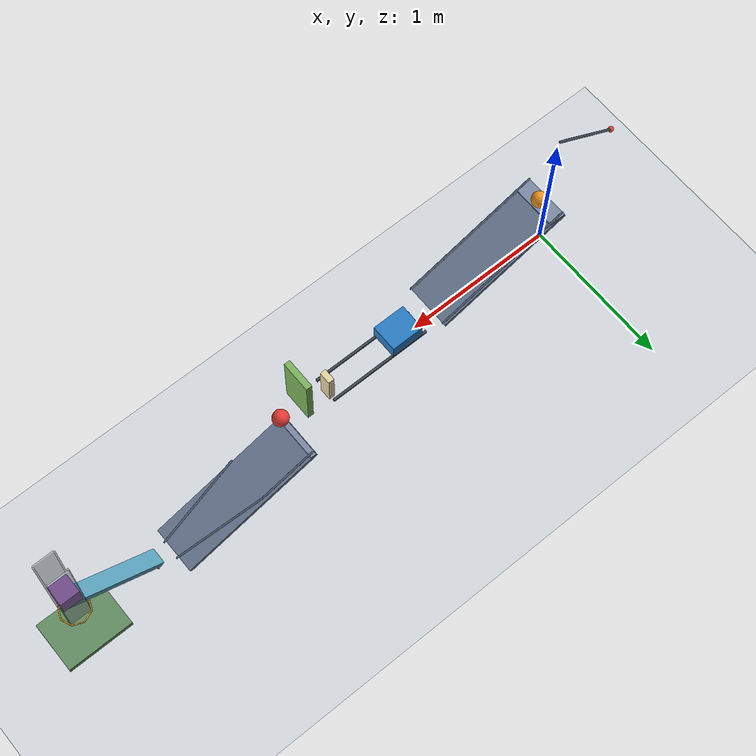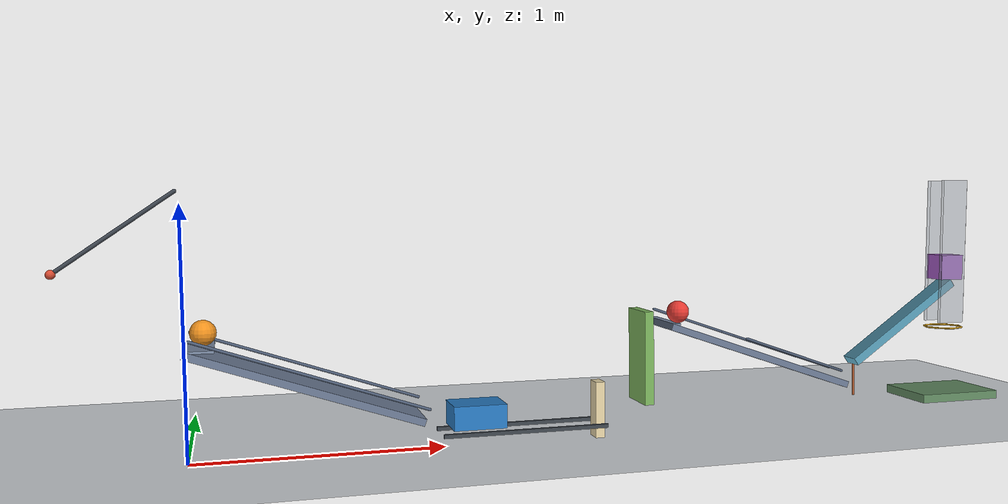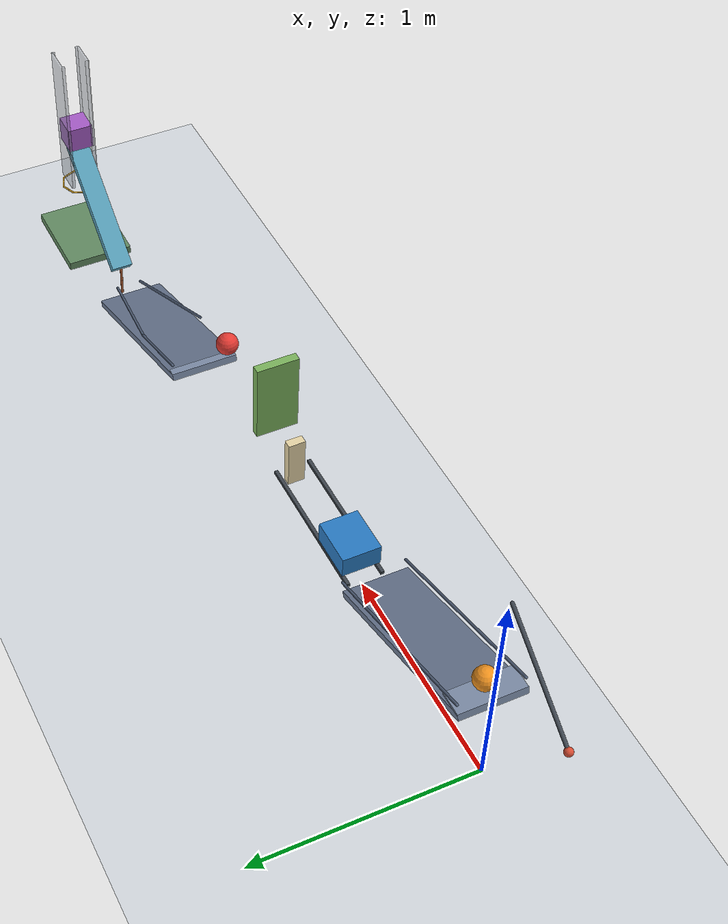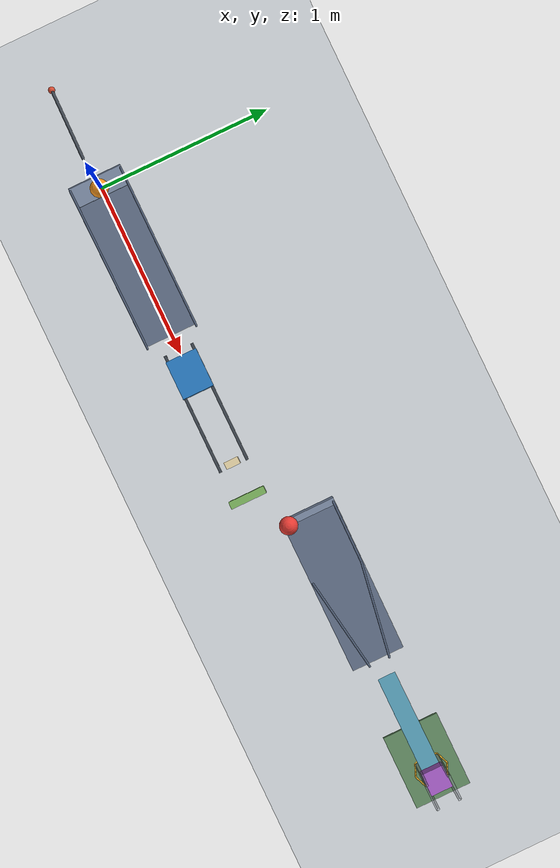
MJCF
<mujoco model="short_pad_chain_reaction">
  <compiler angle="degree" autolimits="true" inertiafromgeom="true"/>
  <option timestep="0.002" gravity="0 0 -9.81" integrator="implicitfast" solver="Newton" iterations="100" cone="elliptic" impratio="5" o_solref="0.006 0.690107" o_solimp="0.95 0.99 0.001" o_friction="0.68 0.68 0.005 0.002 0.002">
    <flag override="enable"/>
  </option>
  <size njmax="2000" nconmax="600"/>
  <visual>
    <headlight ambient="0.35 0.35 0.35" diffuse="0.7 0.7 0.7" specular="0.2 0.2 0.2"/>
    <rgba haze="0.8 0.85 0.9 1"/>
  </visual>

  <worldbody>
    <light name="main_light" pos="1.8 -3 5" dir="0 0 -1" directional="true"/>
    <camera name="overview" pos="4.8 -6.5 3.5" xyaxes="0.91 0.41 0 -0.16 0.35 0.923"/>
    <geom name="floor" type="plane" pos="0 0 0" size="7 4 0.1" friction="0.68 0.005 0.002" condim="6" rgba="0.83 0.85 0.87 1"/>

    <!-- Inclined surface: length 0.95 m, width 0.30 m, inclination 19 degrees.
         Low-end upper surface: z=0.15 m. -->
    <body name="ramp1" pos="0 0 0">
      <geom name="ramp1_surface" type="box" pos="0.444237801 0 0.290462095" euler="0 19 0" size="0.475 0.15 0.015" density="0" friction="0.68 0.005 0.002" rgba="0.42 0.48 0.58 1"/>
      <geom name="ramp1_staging_pad" type="box" pos="0.055 0 0.454289747" size="0.055 0.15 0.005" density="0" friction="0.68 0.005 0.002" rgba="0.48 0.54 0.64 1"/>
      <geom name="ramp1_near_rail" type="capsule" fromto="0.017750318 -0.145 0.495482649 0.911265373 -0.145 0.187820743" size="0.006" density="0" friction="0.68 0.005 0.002" rgba="0.32 0.38 0.48 1"/>
      <geom name="ramp1_far_rail" type="capsule" fromto="0.017750318 0.145 0.495482649 0.911265373 0.145 0.187820743" size="0.006" density="0" friction="0.68 0.005 0.002" rgba="0.32 0.38 0.48 1"/>
    </body>

    <!-- Pivot-to-bob-center length: 0.55 m. Total pendulum mass: 0.40 kg.
         Initial body orientation puts the pendulum 55 degrees left of vertical. -->
    <body name="pendulum1" pos="0.002 0 1.059289747" euler="0 55 0">
      <joint name="pendulum1_hinge" type="hinge" axis="0 -1 0" range="-5 125" damping="0.04"/>
      <geom name="pendulum1_rod" type="capsule" fromto="0 0 -0.02 0 0 -0.532" size="0.008" mass="0.08" friction="0.68 0.005 0.002" rgba="0.25 0.28 0.32 1"/>
      <geom name="pendulum1_bob" type="sphere" pos="0 0 -0.55" size="0.018" mass="0.32" friction="0.68 0.005 0.002" rgba="0.85 0.3 0.2 1"/>
    </body>

    <body name="ball1" pos="0.070 0 0.509289747">
      <freejoint name="ball1_free"/>
      <geom name="ball1_sphere" type="sphere" size="0.05" mass="0.20" friction="0.68 0.005 0.002" condim="6" rgba="0.95 0.58 0.12 1"/>
    </body>

    <!-- Ramp1 low edge: x=0.898242647.
         Initial cart left face: 0.12 m beyond that edge.
         Domino contact occurs after 0.40 m of slide travel. -->
    <body name="cart1" pos="1.128242647 0 0.13">
      <joint name="cart1_slide" type="slide" axis="1 0 0" range="0 0.405" damping="0.20" solreflimit="0.004 1" solimplimit="0.99 0.999 0.0005"/>
      <geom name="cart1_chassis" type="box" size="0.11 0.09 0.05" mass="0.50" friction="0.68 0.005 0.002" rgba="0.16 0.48 0.76 1"/>
    </body>

    <body name="cart1_track" pos="1.328242647 0 0.06">
      <geom name="cart1_track_near" type="box" pos="0 -0.08 0" size="0.35 0.008 0.008" density="0" contype="0" conaffinity="0" friction="0.68 0.005 0.002" rgba="0.24 0.27 0.30 1"/>
      <geom name="cart1_track_far" type="box" pos="0 0.08 0" size="0.35 0.008 0.008" density="0" contype="0" conaffinity="0" friction="0.68 0.005 0.002" rgba="0.24 0.27 0.30 1"/>
    </body>

    <body name="domino1" pos="1.658242647 0 0.12">
      <freejoint name="domino1_free"/>
      <geom name="domino1_block" type="box" size="0.02 0.04 0.12" mass="0.25" friction="0.68 0.005 0.002" rgba="0.9 0.83 0.65 1"/>
    </body>

    <!-- The backward lean holds the flap against its initial stop.
         Panel dimensions: 0.40 by 0.20 by 0.04 m. -->
    <body name="flap1" pos="1.858843 0 0.14" euler="0 -0.5 0">
      <joint name="flap1_hinge" type="hinge" axis="0 1 0" range="0 65" damping="0.04" solreflimit="0.004 1" solimplimit="0.99 0.999 0.0005"/>
      <geom name="flap1_panel" type="box" pos="0 0 0.20" size="0.02 0.10 0.20" mass="0.30" friction="0.68 0.005 0.002" rgba="0.48 0.70 0.36 1"/>
    </body>

    <!-- Ramp2 is laterally offset to clear the flap's swept panel.
         The revised staging pad ends at x=2.085 m, only 0.005 m beyond
         ball2's initial center, rather than at x=2.160 m. -->
    <body name="ramp2" pos="0 0 0">
      <geom name="ramp2_surface" type="box" pos="2.494237801 0.253 0.290462095" euler="0 19 0" size="0.475 0.15 0.015" density="0" friction="0.68 0.005 0.002" rgba="0.42 0.48 0.58 1"/>
      <geom name="ramp2_staging_pad" type="box" pos="2.0675 0.253 0.454289747" size="0.0175 0.15 0.005" density="0" friction="0.68 0.005 0.002" rgba="0.48 0.54 0.64 1"/>
      <geom name="ramp2_far_upper_rail" type="capsule" fromto="2.067750318 0.393 0.495482649 2.417592191 0.393 0.375022432" size="0.006" density="0" friction="0.68 0.005 0.002" rgba="0.32 0.38 0.48 1"/>
      <geom name="ramp2_far_funnel" type="capsule" fromto="2.417592191 0.393 0.375022432 2.961265373 0.311 0.187820743" size="0.006" density="0" friction="0.68 0.005 0.002" rgba="0.32 0.38 0.48 1"/>
      <geom name="ramp2_near_funnel" type="capsule" fromto="2.417592191 0.113 0.375022432 2.961265373 0.195 0.187820743" size="0.006" density="0" friction="0.68 0.005 0.002" rgba="0.32 0.38 0.48 1"/>
    </body>

    <body name="ball2" pos="2.080 0.130 0.509289747">
      <freejoint name="ball2_free"/>
      <geom name="ball2_sphere" type="sphere" size="0.05" mass="0.20" friction="0.68 0.005 0.002" condim="6" rgba="0.9 0.23 0.20 1"/>
    </body>

    <!-- The initial left endpoint lies 0.10 m beyond ramp2's low edge.
         A preloaded torsion spring supplies launch energy.
         The passive catch prevents the seesaw moving before ball2 arrives. -->
    <body name="seesaw1" pos="3.314467061 0.253 0.410" euler="0 -35 0">
      <joint name="seesaw1_hinge" type="hinge" axis="0 -1 0" range="0 40" damping="0.04" stiffness="0.20" springref="916.732472" solreflimit="0.004 1" solimplimit="0.99 0.999 0.0005"/>
      <geom name="seesaw1_beam" type="box" size="0.325 0.05 0.02" mass="0.55" friction="0.68 0.005 0.002" rgba="0.34 0.62 0.72 1"/>
    </body>

    <!-- Initial seesaw/catch contact is intentional support, not a run event.
         Ball2 is intended to tip this back-leaning catch forward. -->
    <body name="seesaw1_catch" pos="3.064994257 0.253 0.05" euler="0 -2 0">
      <joint name="seesaw1_catch_hinge" type="hinge" axis="0 1 0" range="0 100" damping="0.04" solreflimit="0.004 1" solimplimit="0.99 0.999 0.0005"/>
      <geom name="seesaw1_catch_arm" type="capsule" fromto="0 0 0.008 0 0 0.151296789" size="0.006" mass="0.035" friction="0.68 0.005 0.002" rgba="0.65 0.34 0.18 1"/>
    </body>

    <!-- The split side walls leave a central slot for the seesaw beam.
         The guide ends above ring1 and retains the cube's upright alignment. -->
    <body name="block1_guide" pos="3.569219947 0.253 0.75">
      <geom name="block1_guide_left_near" type="box" pos="-0.0645 -0.0574 0" size="0.004 0.0066 0.35" density="0" friction="0.68 0.005 0.002" rgba="0.55 0.58 0.62 0.45"/>
      <geom name="block1_guide_left_far" type="box" pos="-0.0645 0.0574 0" size="0.004 0.0066 0.35" density="0" friction="0.68 0.005 0.002" rgba="0.55 0.58 0.62 0.45"/>
      <geom name="block1_guide_right_near" type="box" pos="0.0645 -0.0574 0" size="0.004 0.0066 0.35" density="0" friction="0.68 0.005 0.002" rgba="0.55 0.58 0.62 0.45"/>
      <geom name="block1_guide_right_far" type="box" pos="0.0645 0.0574 0" size="0.004 0.0066 0.35" density="0" friction="0.68 0.005 0.002" rgba="0.55 0.58 0.62 0.45"/>
      <geom name="block1_guide_near" type="box" pos="0 -0.0645 0" size="0.0645 0.004 0.35" density="0" friction="0.68 0.005 0.002" rgba="0.55 0.58 0.62 0.45"/>
      <geom name="block1_guide_far" type="box" pos="0 0.0645 0" size="0.0645 0.004 0.35" density="0" friction="0.68 0.005 0.002" rgba="0.55 0.58 0.62 0.45"/>
    </body>

    <body name="block1" pos="3.569219947 0.253 0.672795383">
      <freejoint name="block1_free"/>
      <geom name="block1_cube" type="box" size="0.06 0.06 0.06" mass="0.35" friction="0.68 0.005 0.002" rgba="0.65 0.36 0.78 1"/>
    </body>

    <body name="ring1" pos="3.569219947 0.253 0.372795383">
      <geom name="ring1_segment_1" type="capsule" fromto="0.090920941 0 0 0.064290817 0.064290817 0" size="0.004" density="0" friction="0.68 0.005 0.002" rgba="0.95 0.72 0.16 1"/>
      <geom name="ring1_segment_2" type="capsule" fromto="0.064290817 0.064290817 0 0 0.090920941 0" size="0.004" density="0" friction="0.68 0.005 0.002" rgba="0.95 0.72 0.16 1"/>
      <geom name="ring1_segment_3" type="capsule" fromto="0 0.090920941 0 -0.064290817 0.064290817 0" size="0.004" density="0" friction="0.68 0.005 0.002" rgba="0.95 0.72 0.16 1"/>
      <geom name="ring1_segment_4" type="capsule" fromto="-0.064290817 0.064290817 0 -0.090920941 0 0" size="0.004" density="0" friction="0.68 0.005 0.002" rgba="0.95 0.72 0.16 1"/>
      <geom name="ring1_segment_5" type="capsule" fromto="-0.090920941 0 0 -0.064290817 -0.064290817 0" size="0.004" density="0" friction="0.68 0.005 0.002" rgba="0.95 0.72 0.16 1"/>
      <geom name="ring1_segment_6" type="capsule" fromto="-0.064290817 -0.064290817 0 0 -0.090920941 0" size="0.004" density="0" friction="0.68 0.005 0.002" rgba="0.95 0.72 0.16 1"/>
      <geom name="ring1_segment_7" type="capsule" fromto="0 -0.090920941 0 0.064290817 -0.064290817 0" size="0.004" density="0" friction="0.68 0.005 0.002" rgba="0.95 0.72 0.16 1"/>
      <geom name="ring1_segment_8" type="capsule" fromto="0.064290817 -0.064290817 0 0.090920941 0 0" size="0.004" density="0" friction="0.68 0.005 0.002" rgba="0.95 0.72 0.16 1"/>
    </body>

    <!-- At contact with the horizontal door's upper surface, the upright
         cube center is 0.25 m below ring1's center. -->
    <body name="door1" pos="3.359219947 0.253 0.042795383">
      <joint name="door1_hinge" type="hinge" axis="0 1 0" range="-75 0" damping="0.04" solreflimit="0.004 1" solimplimit="0.99 0.999 0.0005"/>
      <geom name="door1_panel" type="box" pos="0.21 0 0" size="0.21 0.16 0.02" mass="0.45" friction="0.68 0.005 0.002" rgba="0.38 0.54 0.38 1"/>
    </body>
  </worldbody>

  <keyframe>
    <key name="start"/>
  </keyframe>
</mujoco>
